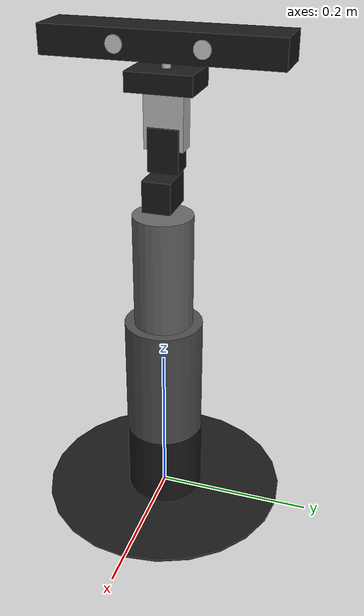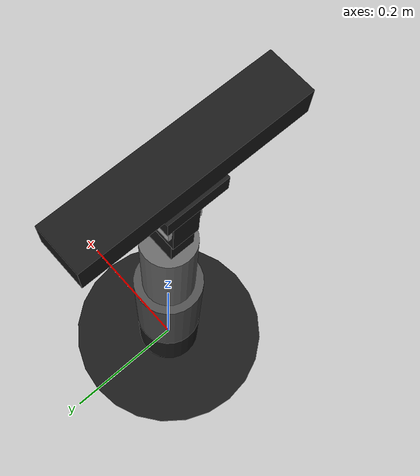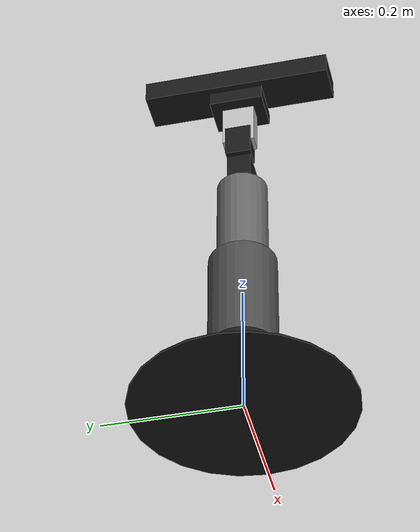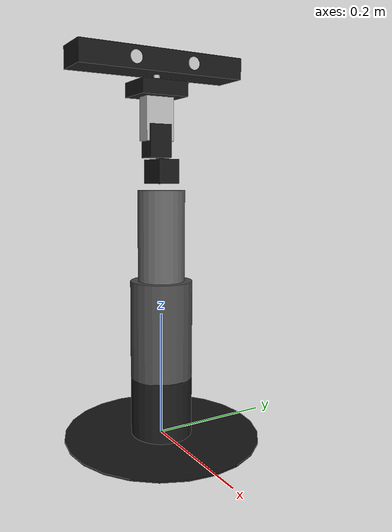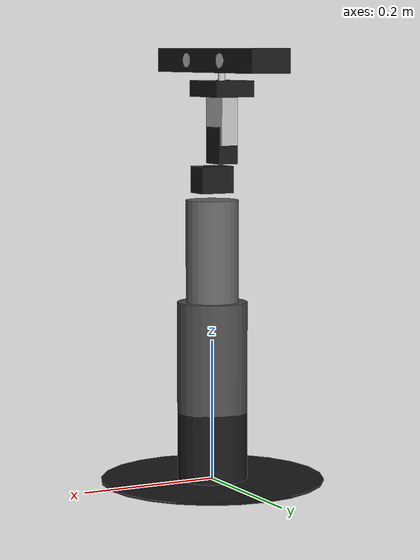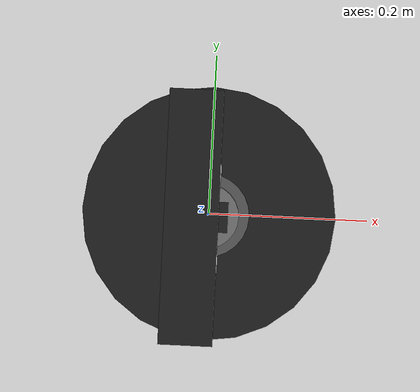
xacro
<?xml version="1.0"?>

<!-- Pi Robot on a pedestal instead of the mobile base -->

<!-- XML namespaces -->
<robot xmlns:sensor="http://playerstage.sourceforge.net/gazebo/xmlschema/#sensor"
       xmlns:controller="http://playerstage.sourceforge.net/gazebo/xmlschema/#controller"
       xmlns:interface="http://playerstage.sourceforge.net/gazebo/xmlschema/#interface"
       xmlns:xacro="http://ros.org/wiki/xacro"
	   name="pi_robot">

    <xacro:property name="M_PI" value="3.14159"/>
    <xacro:property name="SCALE" value="0.0254"/>
    <xacro:property name="M_SCALE" value="0.001"/>

	<xacro:macro name="cyan1">
		<material name="cyan1">
			<color rgba="0 0.9 0.9 0.9"/>
		</material>
	</xacro:macro>

	<xacro:macro name="cyan2">
		<material name="cyan2">
	     <color rgba="0 0.7 0.7 0.9"/>
		</material>
	</xacro:macro>

	<xacro:macro name="cyan3">
		<material name="cyan3">
	     <color rgba="0 0.5 0.5 0.9"/>
		</material>
	</xacro:macro>

	<xacro:macro name="black">
		<material name="black">
			<color rgba="0.1 0.1 0.1 0.9"/>
		</material>
	</xacro:macro>

	<xacro:macro name="black1">
		<material name="black1">
			<color rgba="0.2 0.2 0.2 0.9"/>
		</material>
	</xacro:macro>

	<xacro:macro name="yellow2">
		<material name="yellow2">
			<color rgba="0.8 0.8 0 0.9"/>
		</material>
	</xacro:macro>

	<xacro:macro name="green1">
		<material name="green1">
			<color rgba="0 1 0 0.9"/>
		</material>
	</xacro:macro>

	<xacro:macro name="green2">
		<material name="green2">
			<color rgba="0.1 0.8 0 0.9"/>
		</material>
	</xacro:macro>

	<xacro:macro name="green3">
		<material name="green3">
			<color rgba="0.1 0.5 0.1 0.9"/>
		</material>
	</xacro:macro>

	<xacro:macro name="grey1">
		<material name="grey1">
			<color rgba="0.9 0.9 0.9 0.9"/>
		</material>
	</xacro:macro>

	<xacro:macro name="grey2">
		<material name="grey2">
			<color rgba="0.6 0.6 0.6 0.9"/>
		</material>
	</xacro:macro>

	<xacro:macro name="grey3">
		<material name="grey3">
			<color rgba="0.8 0.8 0.8 0.9"/>
		</material>
	</xacro:macro>

	<xacro:macro name="grey4">
		<material name="grey4">
			<color rgba="0.4 0.4 0.4 0.9"/>
		</material>
	</xacro:macro>

	<xacro:macro name="grey5">
		<material name="grey5">
			<color rgba="0.5 0.5 0.5 0.9"/>
		</material>
	</xacro:macro>

	<xacro:macro name="grey6">
		<material name="grey6">
			<color rgba="0.3 0.3 0.3 0.9"/>
		</material>
	</xacro:macro>

	<xacro:macro name="blue1">
		<material name="blue1">
			<color rgba="0 0 0.9 0.9"/>
		</material>
	</xacro:macro>

	<xacro:macro name="ax12_color">
		<material name="ax12_color">
			<color rgba="0.1 0.1 0.1 0.9"/>
		</material>
	</xacro:macro>

	<xacro:macro name="bracket_color">
		<material name="bracket_color">
			<color rgba="0.75 0.75 0.75 1.0"/>
		</material>
	</xacro:macro>

	<xacro:macro name="ax12" params="name xyz rpy">
		<link name="${name}">
			<visual>
				<origin xyz="${xyz}" rpy="${rpy}" />
				<geometry>
					<box size="0.5 0.32 0.38" />
				</geometry>
				<material name="black1">
					<color rgba="0.2 0.2 0.2 0.9"/>
				</material>
             </visual>
             <collision>
				<origin xyz="${xyz}" rpy="${rpy}" />
					<geometry>
						<box size="0.5 0.32 0.38" />
					</geometry>
             </collision>
             <xacro:default_inertial mass="0.055" />
        </link>
        <xacro:default_gazebo name="${name}" material="Gazebo/FlatBlack" />
	</xacro:macro>

	<xacro:macro name="bracket1" params="name xyz rpy">
		<link name="${name}">
			<visual>
				<origin xyz="${xyz}" rpy="${rpy}" />
				<geometry>
					<box size="0.05 0.025 0.038" />
				</geometry>
				<material name="black1">
					<color rgba="0.2 0.2 0.2 0.9"/>
				</material>
             </visual>
             <collision>
				<origin xyz="${xyz}" rpy="${rpy}" />
					<geometry>
						<box size="0.05 0.025 0.038" />
					</geometry>
             </collision>
             <xacro:default_inertial mass="0.02" />
        </link>
        <xacro:default_gazebo name="${name}" material="Gazebo/WhiteEmissive" />
	</xacro:macro>

	<xacro:macro name="my_box" params="name lwh xyz rpy mass material *rviz_color">
		<link name="${name}">
			<visual>
				<origin xyz="${xyz}" rpy="${rpy}" />
				<geometry>
					<box size="${lwh}" />
				</geometry>
			    <xacro:insert_block name="rviz_color" />
             </visual>
             <collision>
				<origin xyz="${xyz}" rpy="${rpy}" />
					<geometry>
						<box size="${lwh}" />
					</geometry>
             </collision>
             <xacro:default_inertial mass="${mass}" />
        </link>
        <xacro:default_gazebo name="${name}" material="${material}" />
	</xacro:macro>

	<xacro:macro name="my_cylinder" params="name l r xyz rpy mass material *rviz_color">
		<link name="${name}">
			<visual>
				<origin xyz="${xyz}" rpy="${rpy}" />
				<geometry>
					<cylinder length="${l}" radius="${r}" />
				</geometry>
            	<xacro:insert_block name="rviz_color" />
            </visual>
            <collision>
				<origin xyz="${xyz}" rpy="${rpy}" />
					<geometry>
						<cylinder length="${l}" radius="${r}" />
					</geometry>
            </collision>
            <xacro:default_inertial mass="${mass}" />
        </link>
        <xacro:default_gazebo name="${name}" material="${material}" />
	</xacro:macro>

    <xacro:macro name="default_inertial" params="mass">
		<inertial>
			<mass value="${mass}" />
			<inertia ixx="0.001" ixy="0.0" ixz="0.0"
                     iyy="0.001" iyz="0.0"
                     izz="0.001" />
			</inertial>
    </xacro:macro>

    <xacro:macro name="default_gazebo" params="name material">
 		<gazebo reference="${name}">
			<material>${material}</material>
			<selfCollide>false</selfCollide>
			<turnGravityOff>True</turnGravityOff>
		</gazebo>
    </xacro:macro>

 	<!-- ============================   Body   ============================ -->

	<xacro:my_cylinder name="base_link" l="0.0025" r="0.16" xyz="0 0 0" rpy="0 0 0" mass="0.25" material="Gazebo/BlueTransparent">
		<xacro:black />
	</xacro:my_cylinder>

	<xacro:my_cylinder name="lower_base_link" l="0.0975" r="0.05" xyz="0 0 0" rpy="0 0 0" mass="0.25" material="Gazebo/FlatBlack">
		<xacro:black />
	</xacro:my_cylinder>

	<xacro:my_cylinder name="upper_base_link" l="0.1575" r="0.05" xyz="0 0 0" rpy="0 0 0" mass="0.25" material="Gazebo/BlueTransparent">
		<xacro:grey6 />
	</xacro:my_cylinder>

	<xacro:my_cylinder name="lower_torso_link" l="0.145" r="0.0375" xyz="0 0 0" rpy="0 0 0" mass="0.12" material="Gazebo/WhiteEmissive">
		<xacro:grey4 />
	</xacro:my_cylinder>

	<xacro:my_box name="head_pan_link" lwh="0.05 0.035 0.038" xyz="0 0 0" rpy="0 0 0" mass="0.055" material="Gazebo/FlatBlack">
		<xacro:ax12_color />
	</xacro:my_box>

	<xacro:my_box name="head_tilt_link" lwh="0.03 0.038 0.052" xyz="0 0 0" rpy="0 0 0" mass="0.055" material="Gazebo/FlatBlack">
		<xacro:ax12_color />
	</xacro:my_box>

	<xacro:my_box name="neck_link" lwh="0.025 0.048 0.068" xyz="0 0 0.02" rpy="0 0 0" mass="0.05" material="Gazebo/WhiteEmissive">
		<xacro:bracket_color />
	</xacro:my_box>

	<xacro:my_box name="head_base_link" lwh="0.06 0.08 0.023" xyz="0 0 00" rpy="0 0 0" mass="0.1" material="Gazebo/FlatBlack">
		<xacro:black />
	</xacro:my_box>

	<xacro:my_cylinder name="head_post_link" l="0.012" r="0.005" xyz="0 0 00" rpy="0 0 0" mass="0.1" material="Gazebo/WhiteEmissive">
		<xacro:grey3 />
	</xacro:my_cylinder>

	<xacro:my_box name="kinect_link" lwh="0.06 0.282 0.034" xyz="0 0 0" rpy="0 0 0" mass="0.8" material="Gazebo/FlatBlack">
		<xacro:black />
	</xacro:my_box>

	<joint name="kinect_depth_joint" type="fixed">
	  <origin xyz="0 0.018 0" rpy="0 0 0" />
	  <parent link="kinect_link" />
	  <child link="kinect_depth_frame" />
	</joint>

	<link name="kinect_depth_frame">
	  <inertial>
	    <mass value="0.0001" />
	    <origin xyz="0 0 0" />
	    <inertia ixx="0.0001" ixy="0.0" ixz="0.0"
	             iyy="0.0001" iyz="0.0"
	             izz="0.0001" />
	  </inertial>
	</link>

	<joint name="kinect_depth_optical_joint" type="fixed">
	  <origin xyz="0 0 0" rpy="${-M_PI/2} ${M_PI} ${-M_PI/2}" />
	  <parent link="kinect_depth_frame" />
	  <child link="kinect_depth_optical_frame" />
	</joint>

	<link name="kinect_depth_optical_frame">
	  <inertial>
	    <mass value="0.0001" />
	    <origin xyz="0 0 0" />
	    <inertia ixx="0.0001" ixy="0.0" ixz="0.0"
	             iyy="0.0001" iyz="0.0"
	             izz="0.0001" />
	  </inertial>
	</link>

	<joint name="kinect_rgb_joint" type="fixed">
	  <origin xyz="0 -0.005 0" rpy="0 0 0" />
	  <parent link="kinect_link" />
	  <child link="kinect_rgb_frame" />
	</joint>

	<link name="kinect_rgb_frame">
	  <inertial>
	    <mass value="0.0001" />
	    <origin xyz="0 0 0" />
	    <inertia ixx="0.0001" ixy="0.0" ixz="0.0"
	             iyy="0.0001" iyz="0.0"
	             izz="0.0001" />
	  </inertial>
	</link>

	<joint name="kinect_rgb_optical_joint" type="fixed">
	  <origin xyz="0 0 0" rpy="${-M_PI/2} 0 ${-M_PI/2}" />
	  <parent link="kinect_rgb_frame" />
	  <child link="kinect_rgb_optical_frame" />
	</joint>

	<link name="kinect_rgb_optical_frame">
	  <inertial>
	    <mass value="0.0001" />
	    <origin xyz="0 0 0" />
	    <inertia ixx="0.0001" ixy="0.0" ixz="0.0"
	             iyy="0.0001" iyz="0.0"
	             izz="0.0001" />
	  </inertial>
	</link>

	<xacro:my_cylinder name="left_eye_link" l="0.01" r="0.01" xyz="0 0 0" rpy="0 1.57 0" mass="0.001" material="Gazebo/WhiteEmissive">
		<xacro:grey3 />
	</xacro:my_cylinder>

	<xacro:my_cylinder name="right_eye_link" l="0.01" r="0.01" xyz="0 0 00" rpy="0 1.57 0" mass="0.001" material="Gazebo/WhiteEmissive">
		<xacro:grey3 />
	</xacro:my_cylinder>

	<!-- =================== Joint Definitions ==================== -->

	<joint name="lower_base_joint" type="fixed">
    	<parent link="base_link" />
    	<child link="lower_base_link" />
    	<origin xyz="0 0 0.05" rpy="0 0 0" />
	</joint>

	<joint name="upper_base_joint" type="fixed">
    	<parent link="lower_base_link" />
    	<child link="upper_base_link" />
    	<origin xyz="0 0 0.1275" rpy="0 0 0" />
	</joint>

	<joint name="torso_joint" type="fixed">
    	<parent link="upper_base_link" />
    	<child link="lower_torso_link" />
    	<origin xyz="0 0 0.15125" rpy="0 0 0" />
	</joint>

	<joint name="head_pan_servo" type="fixed">
    	<parent link="lower_torso_link" />
    	<child link="head_pan_link" />
    	<origin xyz="0 0 0.1015" rpy="0 0 0" />
	</joint>

	<joint name="head_pan_joint" type="revolute">
    	<parent link="head_pan_link" />
    	<child link="head_tilt_link" />
    	<origin xyz="-0.015 0 0.048" rpy="0 0 0" />
    	<axis xyz="0 0 1" />
    	<limit lower="-3.1416" upper="3.1416" effort="10" velocity="3" />
      	<dynamics damping="0.0"/>
	</joint>

 	<joint name="head_tilt_joint" type="revolute">
    	<parent link="head_tilt_link" />
    	<child link="neck_link" />
    	<origin xyz="0 0 0.014" rpy="0 0 0" />
    	<axis xyz="0 1 0" />
    	<limit lower="-1.57" upper="1.57" effort="10" velocity="3" />
      	<dynamics damping="0.0"/>
	</joint>

 	<joint name="neck_joint" type="fixed">
    	<parent link="neck_link" />
    	<child link="head_base_link" />
    	<origin xyz="0 0 0.0655" rpy="0 0 0" />
	</joint>

	<joint name="head_base_joint" type="fixed">
    	<parent link="head_base_link" />
    	<child link="head_post_link" />
    	<origin xyz="0 0 0.016" rpy="0 0 0" />
	</joint>

	<joint name="head_joint" type="fixed">
    	<parent link="head_post_link" />
    	<child link="kinect_link" />
    	<origin xyz="0 0 0.0235" rpy="0 0 0" />
	</joint>

	<joint name="left_eye_joint" type="fixed">
    	<parent link="kinect_link" />
    	<child link="left_eye_link" />
    	<origin xyz="0.026 0.05 0" rpy="0 0 0" />
	</joint>

	<joint name="right_eye_joint" type="fixed">
    	<parent link="kinect_link" />
    	<child link="right_eye_link" />
    	<origin xyz="0.026 -0.05 0" rpy="0 0 0" />
	</joint>

	<gazebo reference="pi_robot">
  	</gazebo>
</robot>
